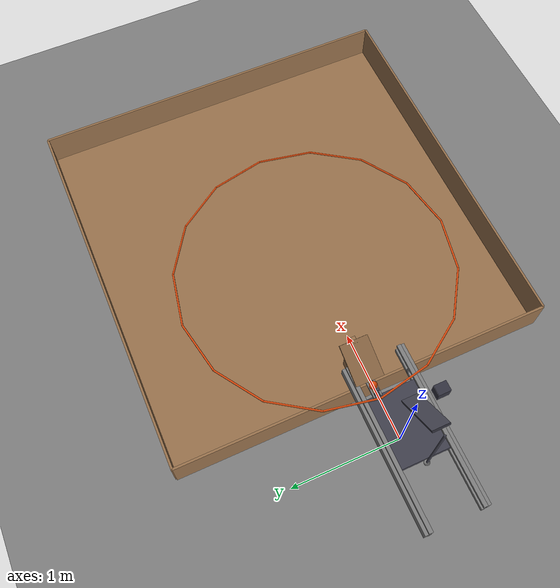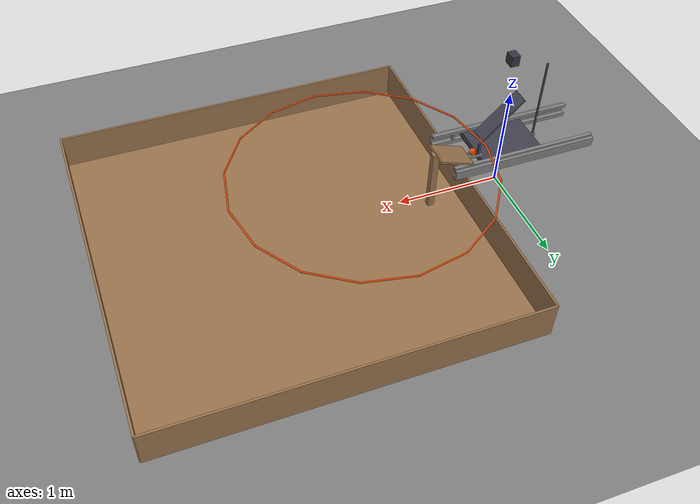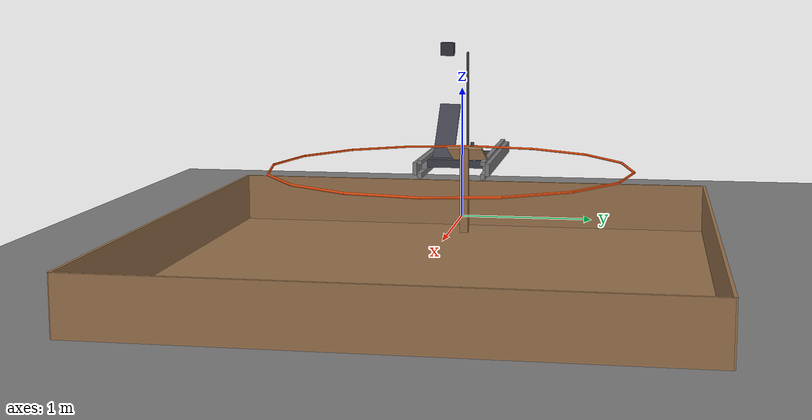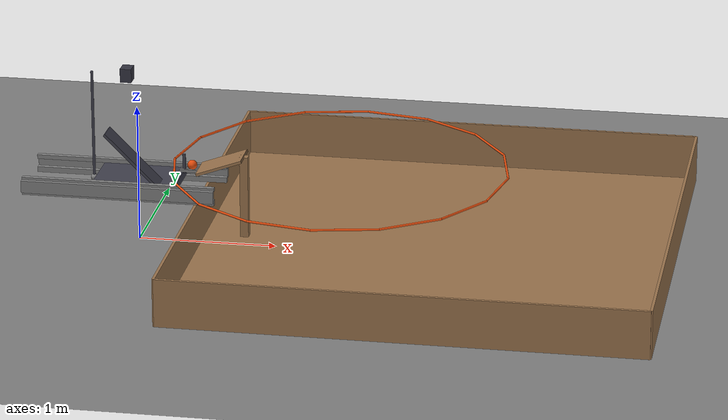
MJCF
<mujoco model="drop_powered_spring_plunger">
  <compiler angle="radian"/>
  <option timestep="0.002"/>
  <worldbody>
    <geom name="floor" type="plane" size="8 8 0.1" friction="0.8 0.005 0.002"/>
    <body name="plunger" pos="0 0 0.45">
      <freejoint/>
      <geom name="plunger" type="box" pos="0 0 0" size="0.3 0.25 0.03" mass="0.5" friction="0.025 0.001 0.001" solref="0.01 1" rgba="0.25 0.25 0.3 1"/>
      <geom name="compression wedge" type="box" pos="0 -0.12 0.2" size="0.282843 0.08 0.01" euler="0 0.785398 0" mass="0.15" friction="0.03 0.005 0.0001" solref="0.01 1" rgba="0.25 0.25 0.3 1"/>
      <geom name="striker" type="box" pos="0.31 0.12 0.1" size="0.01 0.0125 0.07" mass="0.07" friction="0.02 0.005 0.0001" solref="0.01 0.2" rgba="0.25 0.25 0.3 1"/>
    </body>
    <body name="lower left guide">
      <geom name="lower left guide" type="box" pos="-0.1 0.2325 0.4" size="0.7 0.0175 0.02" friction="0.025 0.005 0.0001"/>
    </body>
    <body name="lower right guide">
      <geom name="lower right guide" type="box" pos="-0.1 -0.2325 0.4" size="0.7 0.0175 0.02" friction="0.025 0.005 0.0001"/>
    </body>
    <body name="upper left guide">
      <geom name="upper left guide" type="box" pos="-0.1 0.2325 0.497" size="0.7 0.0175 0.015" friction="0.025 0.005 0.0001"/>
    </body>
    <body name="upper right guide">
      <geom name="upper right guide" type="box" pos="-0.1 -0.2325 0.497" size="0.7 0.0175 0.015" friction="0.025 0.005 0.0001"/>
    </body>
    <body name="left side guide">
      <geom name="left side guide" type="box" pos="-0.1 0.267 0.45" size="0.7 0.015 0.045" friction="0.025 0.005 0.0001"/>
    </body>
    <body name="right side guide">
      <geom name="right side guide" type="box" pos="-0.1 -0.267 0.45" size="0.7 0.015 0.045" friction="0.025 0.005 0.0001"/>
    </body>
    <body name="left travel stop">
      <geom name="left travel stop" type="box" pos="0.39 0.23 0.45" size="0.01 0.02 0.03" solref="0.01 1"/>
    </body>
    <body name="right travel stop">
      <geom name="right travel stop" type="box" pos="0.39 -0.23 0.45" size="0.01 0.02 0.03" solref="0.01 1"/>
    </body>
    <body name="spring follower" pos="-0.325 0 1.25">
      <joint name="return_spring_hinge" type="hinge" pos="0 0 0" axis="0 1 0" limited="true" range="-0.349066 0.698132" stiffness="240" springref="0" damping="0.3" armature="0.0001"/>
      <geom name="spring follower" type="capsule" size="0.01" fromto="0 0 0 0 0 -0.8" mass="0.08" friction="0.01 0.005 0.0001" rgba="0.25 0.25 0.3 1"/>
      <geom name="spring contact" type="sphere" pos="0 0 -0.8" size="0.025" mass="0.03" friction="0.01 0.005 0.0001" solref="0.01 1"/>
    </body>
    <body name="block" pos="-0.04 -0.12 1.29414">
      <freejoint/>
      <geom name="block" type="box" pos="0 0 0" size="0.04 0.05 0.05" mass="2" friction="0.03 0.005 0.0001" solref="0.01 1" rgba="0.2 0.2 0.25 1"/>
    </body>
    <body name="ball staging right rail">
      <geom name="ball staging right rail" type="box" pos="0.36 0.09 0.505" size="0.08 0.0075 0.01" friction="0.3 0.005 0.0001"/>
    </body>
    <body name="ball staging left rail">
      <geom name="ball staging left rail" type="box" pos="0.36 0.15 0.505" size="0.08 0.0075 0.01" friction="0.3 0.005 0.0001"/>
    </body>
    <body name="ramp">
      <geom name="ramp_deck" type="box" pos="0.585 0.12 0.57" size="0.17557 0.125 0.01" euler="0 2.79282 0" friction="0.3 0.001 0.001" solref="0.01 1" rgba="0.6 0.45 0.3 1"/>
      <geom name="ramp_leg" type="box" pos="0.75 0.12 0.315" size="0.03 0.03 0.315" friction="0.3 0.001 0.001" solref="0.01 1" rgba="0.6 0.45 0.3 1"/>
    </body>
    <body name="ball" pos="0.37 0.12 0.542">
      <freejoint/>
      <geom name="ball" type="sphere" pos="0 0 0" size="0.035" mass="0.05" condim="6" friction="0.3 0.001 0.001" solref="0.01 1" rgba="0.9 0.3 0.05 1"/>
    </body>
    <body name="hoop">
      <geom name="hoop_00" type="capsule" size="0.008" fromto="2.658 0.12 0.58 2.56605 0.582282 0.58" rgba="0.9 0.3 0.05 1"/>
      <geom name="hoop_01" type="capsule" size="0.008" fromto="2.56605 0.582282 0.58 2.30418 0.974185 0.58" rgba="0.9 0.3 0.05 1"/>
      <geom name="hoop_02" type="capsule" size="0.008" fromto="2.30418 0.974185 0.58 1.91228 1.23605 0.58" rgba="0.9 0.3 0.05 1"/>
      <geom name="hoop_03" type="capsule" size="0.008" fromto="1.91228 1.23605 0.58 1.45 1.328 0.58" rgba="0.9 0.3 0.05 1"/>
      <geom name="hoop_04" type="capsule" size="0.008" fromto="1.45 1.328 0.58 0.987718 1.23605 0.58" rgba="0.9 0.3 0.05 1"/>
      <geom name="hoop_05" type="capsule" size="0.008" fromto="0.987718 1.23605 0.58 0.595815 0.974185 0.58" rgba="0.9 0.3 0.05 1"/>
      <geom name="hoop_06" type="capsule" size="0.008" fromto="0.595815 0.974185 0.58 0.333954 0.582282 0.58" rgba="0.9 0.3 0.05 1"/>
      <geom name="hoop_07" type="capsule" size="0.008" fromto="0.333954 0.582282 0.58 0.242 0.12 0.58" rgba="0.9 0.3 0.05 1"/>
      <geom name="hoop_08" type="capsule" size="0.008" fromto="0.242 0.12 0.58 0.333954 -0.342282 0.58" rgba="0.9 0.3 0.05 1"/>
      <geom name="hoop_09" type="capsule" size="0.008" fromto="0.333954 -0.342282 0.58 0.595815 -0.734185 0.58" rgba="0.9 0.3 0.05 1"/>
      <geom name="hoop_10" type="capsule" size="0.008" fromto="0.595815 -0.734185 0.58 0.987718 -0.996046 0.58" rgba="0.9 0.3 0.05 1"/>
      <geom name="hoop_11" type="capsule" size="0.008" fromto="0.987718 -0.996046 0.58 1.45 -1.088 0.58" rgba="0.9 0.3 0.05 1"/>
      <geom name="hoop_12" type="capsule" size="0.008" fromto="1.45 -1.088 0.58 1.91228 -0.996046 0.58" rgba="0.9 0.3 0.05 1"/>
      <geom name="hoop_13" type="capsule" size="0.008" fromto="1.91228 -0.996046 0.58 2.30418 -0.734185 0.58" rgba="0.9 0.3 0.05 1"/>
      <geom name="hoop_14" type="capsule" size="0.008" fromto="2.30418 -0.734185 0.58 2.56605 -0.342282 0.58" rgba="0.9 0.3 0.05 1"/>
      <geom name="hoop_15" type="capsule" size="0.008" fromto="2.56605 -0.342282 0.58 2.658 0.12 0.58" rgba="0.9 0.3 0.05 1"/>
    </body>
    <body name="cup">
      <geom name="cup_base" type="box" pos="2.15 0.12 0.01" size="1.7 1.7 0.01" friction="1 0.02 0.02" solref="0.01 1" rgba="0.6 0.45 0.3 1"/>
      <geom name="cup_near_wall" type="box" pos="0.45 0.12 0.175" size="0.01 1.7 0.175" friction="1 0.02 0.02" solref="0.01 1" rgba="0.6 0.45 0.3 1"/>
      <geom name="cup_far_wall" type="box" pos="3.85 0.12 0.175" size="0.01 1.7 0.175" friction="1 0.02 0.02" solref="0.01 1" rgba="0.6 0.45 0.3 1"/>
      <geom name="cup_left_wall" type="box" pos="2.15 1.82 0.175" size="1.7 0.01 0.175" friction="1 0.02 0.02" solref="0.01 1" rgba="0.6 0.45 0.3 1"/>
      <geom name="cup_right_wall" type="box" pos="2.15 -1.58 0.175" size="1.7 0.01 0.175" friction="1 0.02 0.02" solref="0.01 1" rgba="0.6 0.45 0.3 1"/>
    </body>
  </worldbody>
  <keyframe>
    <key name="start" qpos="0 0 0.45 1 0 0 0 0 -0.04 -0.12 1.29414 1 0 0 0 0.37 0.12 0.542 1 0 0 0" qvel="0 0 0 0 0 0 0 0 0 0 0 0 0 0 0 0 0 0 0"/>
  </keyframe>
</mujoco>
